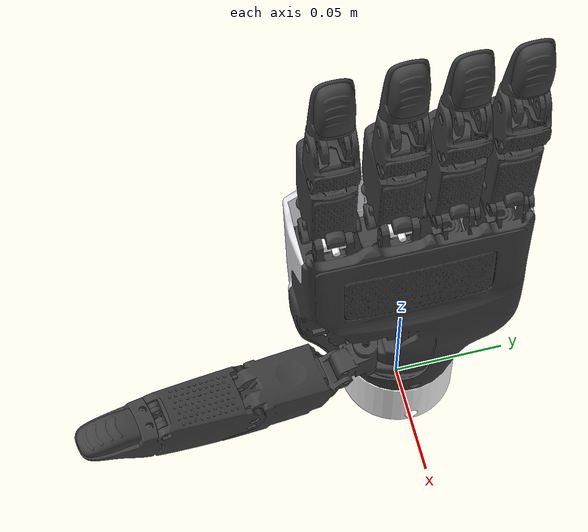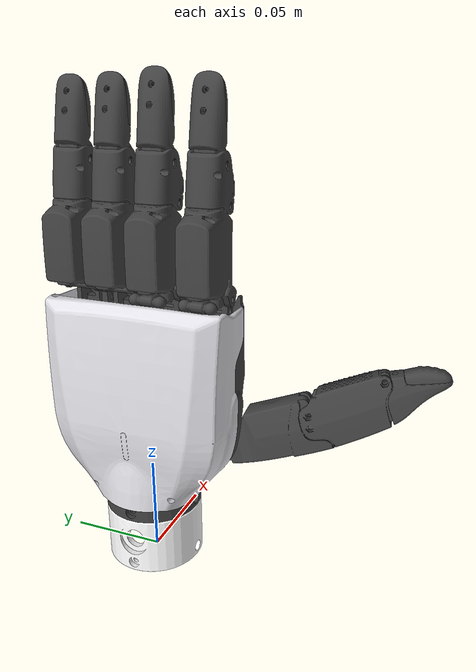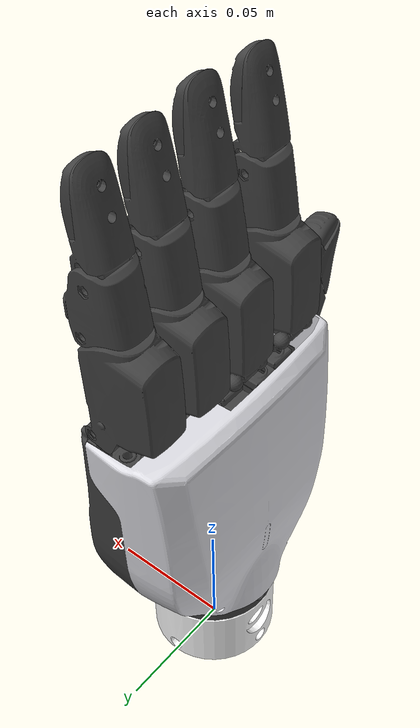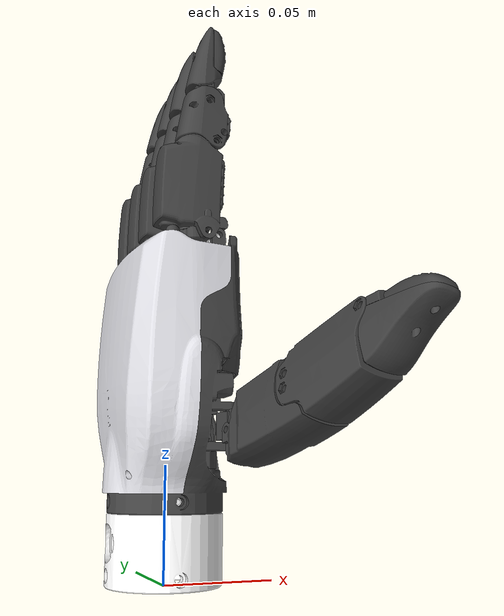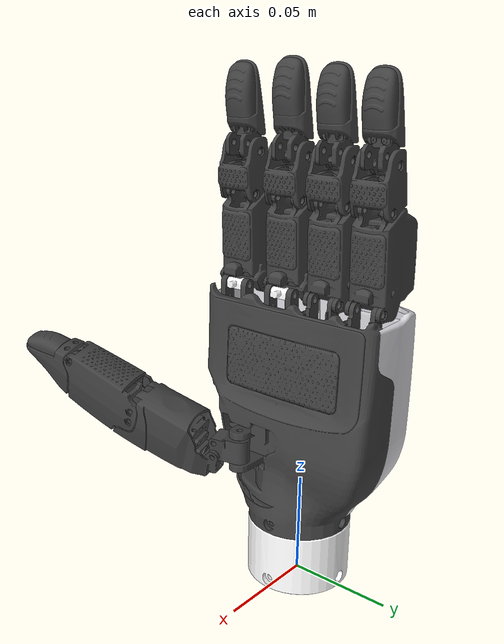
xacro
<?xml version="1.0" encoding="utf-8"?>
<robot name="RH5DG2_L_2026_01_12" xmlns:xacro="http://www.ros.org/wiki/xacro">
  <link name="left_hand_flange">
    <inertial>
      <origin xyz="0.000590324230515745 4.41066235895571E-08 0.018658168492136" rpy="0 0 0" />
      <mass value="0.0816272765426702" />
      <inertia ixx="2.75104686550082E-05" ixy="4.85912163791784E-11" ixz="3.17186486652321E-08" iyy="2.64222243265588E-05" iyz="-1.09459930565443E-11" izz="3.62935481756171E-05" />
    </inertial>
    <visual>
      <origin xyz="0 0 0" rpy="0 0 0" />
      <geometry>
        <mesh filename="package://rh5dg2_description/meshes/left_mirrored/left_hand_flange.STL" />
      </geometry>
      <material name="">
        <color rgba="1 1 1 1" />
      </material>
    </visual>
    <collision>
      <origin xyz="0 0 0" rpy="0 0 0" />
      <geometry>
        <mesh filename="package://rh5dg2_description/meshes/left_mirrored/left_hand_flange.STL" />
      </geometry>
    </collision>
  </link>
  <joint name="left_flange_joint" type="fixed">
    <origin xyz="0 0 0.03" rpy="0 0 0" />
    <parent link="left_hand_flange" />
    <child link="left_hand_base" />
    <axis xyz="0 0 0" />
  </joint>
  <link name="left_hand_base">
    <inertial>
      <origin xyz="0.00476756631465456 -0.00175486916477953 0.0587979044163915" rpy="0 0 0" />
      <mass value="0.313373727622822" />
      <inertia ixx="0.000278996704854979" ixy="-5.98018974024641E-06" ixz="-1.05020418854344E-05" iyy="0.000216312986429234" iyz="1.42127984491883E-05" izz="0.000114394945480033" />
    </inertial>
    <visual>
      <origin xyz="0 0 0" rpy="0 0 0" />
      <geometry>
        <mesh filename="package://rh5dg2_description/meshes/left_mirrored/left_hand_base.STL" />
      </geometry>
      <material name="">
        <color rgba="0.25 0.25 0.25 1" />
      </material>
    </visual>
    <collision>
      <origin xyz="0 0 0" rpy="0 0 0" />
      <geometry>
        <mesh filename="package://rh5dg2_description/meshes/left_mirrored/left_hand_base.STL" />
      </geometry>
    </collision>
  </link>
  <link name="left_thumb_yaw">
    <inertial>
      <origin xyz="0.000851897283664193 -0.00483571971174275 -0.00574141841695075" rpy="0 0 0" />
      <mass value="0.00481735450280768" />
      <inertia ixx="1.77883416432454E-07" ixy="1.4852348790338E-08" ixz="-1.10223746267107E-09" iyy="9.58659671745112E-08" iyz="-5.54372476858133E-11" izz="1.65931218249892E-07" />
    </inertial>
    <visual>
      <origin xyz="0 0 0" rpy="0 0 0" />
      <geometry>
        <mesh filename="package://rh5dg2_description/meshes/left_mirrored/left_thumb_yaw.STL" />
      </geometry>
      <material name="">
        <color rgba="0.25 0.25 0.25 1" />
      </material>
    </visual>
    <collision>
      <origin xyz="0 0 0" rpy="0 0 0" />
      <geometry>
        <mesh filename="package://rh5dg2_description/meshes/left_mirrored/left_thumb_yaw.STL" />
      </geometry>
    </collision>
  </link>
  <joint name="left_thumb_yaw_joint" type="revolute">
    <origin xyz="0.021 -0.021699 0.04175" rpy="0 0 0" />
    <parent link="left_hand_base" />
    <child link="left_thumb_yaw" />
    <axis xyz="0 0 1" />
    <limit lower="0" upper="1.92" effort="1" velocity="2" />
  </joint>
  <link name="left_thumb_mcp">
    <inertial>
      <origin xyz="0.025194612573869 -0.00470162547088749 -0.00721129474275403" rpy="0 0 0" />
      <mass value="0.0417560711563155" />
      <inertia ixx="4.59979341669256E-06" ixy="1.45470106933137E-06" ixz="5.58870625419533E-09" iyy="6.84088254138929E-06" iyz="-6.02428016494947E-09" izz="8.65411062567632E-06" />
    </inertial>
    <visual>
      <origin xyz="0 0 0" rpy="0 0 0" />
      <geometry>
        <mesh filename="package://rh5dg2_description/meshes/left_mirrored/left_thumb_mcp.STL" />
      </geometry>
      <material name="">
        <color rgba="0.25 0.25 0.25 1" />
      </material>
    </visual>
    <collision>
      <origin xyz="0 0 0" rpy="0 0 0" />
      <geometry>
        <mesh filename="package://rh5dg2_description/meshes/left_mirrored/left_thumb_mcp.STL" />
      </geometry>
    </collision>
  </link>
  <joint name="left_thumb_mcp_joint" type="revolute">
    <origin xyz="0.0084186 -0.010193 -0.01022" rpy="-1.7453 0 -1.3963" />
    <parent link="left_thumb_yaw" />
    <child link="left_thumb_mcp" />
    <axis xyz="0 0 -1" />
    <limit lower="0" upper="0.6632" effort="1" velocity="2" />
  </joint>
  <link name="left_thumb_pip">
    <inertial>
      <origin xyz="0.0196408645855889 -0.00242395573483212 -0.0109191426793314" rpy="0 0 0" />
      <mass value="0.0413809633564141" />
      <inertia ixx="4.96850464366127E-06" ixy="1.31907241751355E-06" ixz="8.88960161741137E-09" iyy="6.85457643394163E-06" iyz="-4.37339295353162E-09" izz="8.67807228359951E-06" />
    </inertial>
    <visual>
      <origin xyz="0 0 0" rpy="0 0 0" />
      <geometry>
        <mesh filename="package://rh5dg2_description/meshes/left_mirrored/left_thumb_pip.STL" />
      </geometry>
      <material name="">
        <color rgba="0.25 0.25 0.25 1" />
      </material>
    </visual>
    <collision>
      <origin xyz="0 0 0" rpy="0 0 0" />
      <geometry>
        <mesh filename="package://rh5dg2_description/meshes/left_mirrored/left_thumb_pip.STL" />
      </geometry>
    </collision>
  </link>
  <joint name="left_thumb_pip_joint" type="revolute">
    <origin xyz="0.043727 -0.01749 0.0036" rpy="0 0 0" />
    <parent link="left_thumb_mcp" />
    <child link="left_thumb_pip" />
    <axis xyz="0 0 -1" />
    <limit lower="0" upper="1.041888" effort="1" velocity="2" />
    <mimic joint="left_thumb_mcp_joint" multiplier="1.0853" offset="0" />
  </joint>
  <link name="left_thumb_dip">
    <inertial>
      <origin xyz="0.0129223767041669 0.00448868354831102 -0.00799774270077806" rpy="0 0 0" />
      <mass value="0.00737636421207598" />
      <inertia ixx="4.78965186477482E-07" ixy="3.84626531297066E-08" ixz="-1.001875596605E-10" iyy="8.07509344169254E-07" iyz="7.91953445955167E-11" izz="8.31354000304304E-07" />
    </inertial>
    <visual>
      <origin xyz="0 0 0" rpy="0 0 0" />
      <geometry>
        <mesh filename="package://rh5dg2_description/meshes/left_mirrored/left_thumb_dip.STL" />
      </geometry>
      <material name="">
        <color rgba="0.25 0.25 0.25 1" />
      </material>
    </visual>
    <collision>
      <origin xyz="0 0 0" rpy="0 0 0" />
      <geometry>
        <mesh filename="package://rh5dg2_description/meshes/left_mirrored/left_thumb_dip.STL" />
      </geometry>
    </collision>
  </link>
  <joint name="left_thumb_dip_joint" type="revolute">
    <origin xyz="0.036427 -0.019902 -0.0028" rpy="0 0 0" />
    <parent link="left_thumb_pip" />
    <child link="left_thumb_dip" />
    <axis xyz="0 0 -1" />
    <limit lower="0" upper="1.03" effort="1" velocity="2" />
  </joint>
  <link name="left_thumb_force_sensor">
    <inertial>
      <origin xyz="1.49901055418299E-05 0.00563264518277098 -0.00559872008620623" rpy="0 0 0" />
      <mass value="0.00082154243439554" />
      <inertia ixx="3.90581954306162E-08" ixy="1.27342605974583E-11" ixz="1.9845992056927E-12" iyy="1.76549694169177E-08" iyz="9.02510719590674E-09" izz="4.94025774187095E-08" />
    </inertial>
    <visual>
      <origin xyz="0 0 0" rpy="0 0 0" />
      <geometry>
        <mesh filename="package://rh5dg2_description/meshes/left_mirrored/left_thumb_force_sensor.STL" />
      </geometry>
      <material name="">
        <color rgba="0.25 0.25 0.25 1" />
      </material>
    </visual>
    <collision>
      <origin xyz="0 0 0" rpy="0 0 0" />
      <geometry>
        <mesh filename="package://rh5dg2_description/meshes/left_mirrored/left_thumb_force_sensor.STL" />
      </geometry>
      <surface>
        <friction>
          <ode>
            <mu>0.25</mu>
            <mu2>0.25</mu2>
          </ode>
        </friction>
      </surface>
    </collision>
  </link>
  <joint name="left_thumb_force_sensor_joint" type="fixed">
    <origin xyz="0.025343 -0.0072822 -0.0079999" rpy="1.2546 -1.5705 0.4908" />
    <parent link="left_thumb_dip" />
    <child link="left_thumb_force_sensor" />
    <axis xyz="0 0 0" />
  </joint>
  <link name="left_index_pitch">
    <inertial>
      <origin xyz="-0.000367349463998261 0.000210166188066754 0.00749999141843509" rpy="0 0 0" />
      <mass value="0.00120122602313453" />
      <inertia ixx="7.1980057585389E-09" ixy="-2.00682705504413E-10" ixz="-9.82275603332215E-15" iyy="1.51631692815451E-08" iyz="-1.89296029269202E-14" izz="1.15933131895546E-08" />
    </inertial>
    <visual>
      <origin xyz="0 0 0" rpy="0 0 0" />
      <geometry>
        <mesh filename="package://rh5dg2_description/meshes/left_mirrored/left_index_pitch.STL" />
      </geometry>
      <material name="">
        <color rgba="1 1 1 1" />
      </material>
    </visual>
    <collision>
      <origin xyz="0 0 0" rpy="0 0 0" />
      <geometry>
        <mesh filename="package://rh5dg2_description/meshes/left_mirrored/left_index_pitch.STL" />
      </geometry>
    </collision>
  </link>
  <joint name="left_index_pitch_joint" type="revolute">
    <origin xyz="0.01 -0.040749 0.11475" rpy="-1.5708 0 0" />
    <parent link="left_hand_base" />
    <child link="left_index_pitch" />
    <axis xyz="0 0 1" />
    <limit lower="0" upper="1.45735" effort="1" velocity="2" />
  </joint>
  <link name="left_index_mcp">
    <inertial>
      <origin xyz="-2.01467999326986E-05 -0.0194880288322318 -0.0167588939823536" rpy="0 0 0" />
      <mass value="0.0424626596591662" />
      <inertia ixx="8.58396037676953E-06" ixy="-4.88991803458719E-09" ixz="-2.94206076182322E-09" iyy="3.47062801235869E-06" iyz="1.64833233320948E-07" izz="7.46371056418488E-06" />
    </inertial>
    <visual>
      <origin xyz="0 0 0" rpy="0 0 0" />
      <geometry>
        <mesh filename="package://rh5dg2_description/meshes/left_mirrored/left_index_mcp.STL" />
      </geometry>
      <material name="">
        <color rgba="0.25 0.25 0.25 1" />
      </material>
    </visual>
    <collision>
      <origin xyz="0 0 0" rpy="0 0 0" />
      <geometry>
        <mesh filename="package://rh5dg2_description/meshes/left_mirrored/left_index_mcp.STL" />
      </geometry>
    </collision>
  </link>
  <joint name="left_index_mcp_joint" type="revolute">
    <origin xyz="0.0054995 7.3567E-05 0.0075" rpy="-0.013375 1.5708 0" />
    <parent link="left_index_pitch" />
    <child link="left_index_mcp" />
    <axis xyz="0 0 -1" />
    <limit lower="-0.26118" upper="0.26118" effort="1" velocity="2" />
  </joint>
  <link name="left_index_pip">
    <inertial>
      <origin xyz="-0.00314419755359261 -0.0106744889274093 0.00864412503243511" rpy="0 0 0" />
      <mass value="0.00574496268336632" />
      <inertia ixx="4.93347889217061E-07" ixy="-8.64715993100959E-08" ixz="-5.69691223041633E-10" iyy="4.81536550488213E-07" iyz="-1.94076484140821E-09" izz="5.21882082889534E-07" />
    </inertial>
    <visual>
      <origin xyz="0 0 0" rpy="0 0 0" />
      <geometry>
        <mesh filename="package://rh5dg2_description/meshes/left_mirrored/left_index_pip.STL" />
      </geometry>
      <material name="">
        <color rgba="0.25 0.25 0.25 1" />
      </material>
    </visual>
    <collision>
      <origin xyz="0 0 0" rpy="0 0 0" />
      <geometry>
        <mesh filename="package://rh5dg2_description/meshes/left_mirrored/left_index_pip.STL" />
      </geometry>
    </collision>
  </link>
  <joint name="left_index_pip_joint" type="revolute">
    <origin xyz="0.0084499 -0.042211 -0.0075397" rpy="1.5708 -1.5574 -1.5708" />
    <parent link="left_index_mcp" />
    <child link="left_index_pip" />
    <axis xyz="0 0 1" />
    <limit lower="0" upper="1.396" effort="1" velocity="2" />
  </joint>
  <link name="left_index_dip">
    <inertial>
      <origin xyz="-0.000644949745313064 -0.0154182461989069 0.00810065277966891" rpy="0 0 0" />
      <mass value="0.00664978049326489" />
      <inertia ixx="6.05852720084231E-07" ixy="4.01125528847643E-08" ixz="2.81985876722265E-11" iyy="1.81147685100013E-07" iyz="2.47884779332845E-11" izz="5.21594011307318E-07" />
    </inertial>
    <visual>
      <origin xyz="0 0 0" rpy="0 0 0" />
      <geometry>
        <mesh filename="package://rh5dg2_description/meshes/left_mirrored/left_index_dip.STL" />
      </geometry>
      <material name="">
        <color rgba="0.25 0.25 0.25 1" />
      </material>
    </visual>
    <collision>
      <origin xyz="0 0 0" rpy="0 0 0" />
      <geometry>
        <mesh filename="package://rh5dg2_description/meshes/left_mirrored/left_index_dip.STL" />
      </geometry>
    </collision>
  </link>
  <joint name="left_index_dip_joint" type="revolute">
    <origin xyz="-0.0032605 -0.018491 0.00035" rpy="0 0 0" />
    <parent link="left_index_pip" />
    <child link="left_index_dip" />
    <axis xyz="0 0 1" />
    <limit lower="0" upper="1.568" effort="1" velocity="2" />
    <mimic joint="left_index_pip_joint" multiplier="1.1232" offset="0" />
  </joint>
  <link name="left_index_force_sensor">
    <inertial>
      <origin xyz="1.50411264972679E-05 0.00563322560166721 -0.00559906326998691" rpy="0 0 0" />
      <mass value="0.000821477170958115" />
      <inertia ixx="3.90513353148686E-08" ixy="1.11829645998234E-11" ixz="2.69394488312643E-12" iyy="1.7654484497724E-08" iyz="9.0241075264863E-09" izz="4.93951009703017E-08" />
    </inertial>
    <visual>
      <origin xyz="0 0 0" rpy="0 0 0" />
      <geometry>
        <mesh filename="package://rh5dg2_description/meshes/left_mirrored/left_index_force_sensor.STL" />
      </geometry>
      <material name="">
        <color rgba="0.25 0.25 0.25 1" />
      </material>
    </visual>
    <collision>
      <origin xyz="0 0 0" rpy="0 0 0" />
      <geometry>
        <mesh filename="package://rh5dg2_description/meshes/left_mirrored/left_index_force_sensor.STL" />
      </geometry>
      <surface>
        <friction>
          <ode>
            <mu>0.25</mu>
            <mu2>0.25</mu2>
          </ode>
        </friction>
      </surface>
    </collision>
  </link>
  <joint name="left_index_force_sensor_joint" type="fixed">
    <origin xyz="0.0081855 -0.031293 0.0080998" rpy="-1.887 1.5705 -2.1733" />
    <parent link="left_index_dip" />
    <child link="left_index_force_sensor" />
    <axis xyz="0 0 0" />
  </joint>
  <link name="left_middle_pitch">
    <inertial>
      <origin xyz="-0.000367349404021302 0.000210161704238897 0.00748999141843493" rpy="0 0 0" />
      <mass value="0.00120122602313453" />
      <inertia ixx="7.19800575853891E-09" ixy="-2.00682705504411E-10" ixz="-9.82275603809425E-15" iyy="1.51631692815451E-08" iyz="-1.89296029311036E-14" izz="1.15933131895546E-08" />
    </inertial>
    <visual>
      <origin xyz="0 0 0" rpy="0 0 0" />
      <geometry>
        <mesh filename="package://rh5dg2_description/meshes/left_mirrored/left_middle_pitch.STL" />
      </geometry>
      <material name="">
        <color rgba="1 1 1 1" />
      </material>
    </visual>
    <collision>
      <origin xyz="0 0 0" rpy="0 0 0" />
      <geometry>
        <mesh filename="package://rh5dg2_description/meshes/left_mirrored/left_middle_pitch.STL" />
      </geometry>
    </collision>
  </link>
  <joint name="left_middle_pitch_joint" type="revolute">
    <origin xyz="0.01 -0.014999 0.11475" rpy="-1.5708 0 0" />
    <parent link="left_hand_base" />
    <child link="left_middle_pitch" />
    <axis xyz="0 0 1" />
    <limit lower="0" upper="1.45735" effort="1" velocity="2" />
  </joint>
  <link name="left_middle_mcp">
    <inertial>
      <origin xyz="-2.0146945491413E-05 -0.0194880312652293 -0.0167588944645467" rpy="0 0 0" />
      <mass value="0.042462664998855" />
      <inertia ixx="8.58396241049123E-06" ixy="-4.89002069633661E-09" ixz="-2.94206543993551E-09" iyy="3.47062806248695E-06" iyz="1.64832922001247E-07" izz="7.46371256678543E-06" />
    </inertial>
    <visual>
      <origin xyz="0 0 0" rpy="0 0 0" />
      <geometry>
        <mesh filename="package://rh5dg2_description/meshes/left_mirrored/left_middle_mcp.STL" />
      </geometry>
      <material name="">
        <color rgba="0.25 0.25 0.25 1" />
      </material>
    </visual>
    <collision>
      <origin xyz="0 0 0" rpy="0 0 0" />
      <geometry>
        <mesh filename="package://rh5dg2_description/meshes/left_mirrored/left_middle_mcp.STL" />
      </geometry>
    </collision>
  </link>
  <joint name="left_middle_mcp_joint" type="revolute">
    <origin xyz="0.0054995 7.3563E-05 0.00749" rpy="-0.013375 1.5708 0" />
    <parent link="left_middle_pitch" />
    <child link="left_middle_mcp" />
    <axis xyz="0 0 -1" />
    <limit lower="-0.26118" upper="0.26118" effort="1" velocity="2" />
  </joint>
  <link name="left_middle_pip">
    <inertial>
      <origin xyz="-0.0031441972034093 -0.0106744891490008 0.00864412512279808" rpy="0 0 0" />
      <mass value="0.00574496250418362" />
      <inertia ixx="4.93347880963852E-07" ixy="-8.6471614745122E-08" ixz="-5.69682248129181E-10" iyy="4.81536528984814E-07" iyz="-1.94076860553629E-09" izz="5.21882050440504E-07" />
    </inertial>
    <visual>
      <origin xyz="0 0 0" rpy="0 0 0" />
      <geometry>
        <mesh filename="package://rh5dg2_description/meshes/left_mirrored/left_middle_pip.STL" />
      </geometry>
      <material name="">
        <color rgba="0.25 0.25 0.25 1" />
      </material>
    </visual>
    <collision>
      <origin xyz="0 0 0" rpy="0 0 0" />
      <geometry>
        <mesh filename="package://rh5dg2_description/meshes/left_mirrored/left_middle_pip.STL" />
      </geometry>
    </collision>
  </link>
  <joint name="left_middle_pip_joint" type="revolute">
    <origin xyz="0.0084499 -0.042211 -0.0075397" rpy="1.5708 -1.5574 -1.5708" />
    <parent link="left_middle_mcp" />
    <child link="left_middle_pip" />
    <axis xyz="0 0 1" />
    <limit lower="0" upper="1.396" effort="1" velocity="2" />
  </joint>
  <link name="left_middle_dip">
    <inertial>
      <origin xyz="-0.000701517469291216 -0.0161183560449928 0.00810132146835783" rpy="0 0 0" />
      <mass value="0.00790894444915994" />
      <inertia ixx="9.91831302518168E-07" ixy="-4.22510553763792E-09" ixz="7.16512413943551E-11" iyy="2.48636663362811E-07" iyz="1.49937666788817E-11" izz="9.19075362342684E-07" />
    </inertial>
    <visual>
      <origin xyz="0 0 0" rpy="0 0 0" />
      <geometry>
        <mesh filename="package://rh5dg2_description/meshes/left_mirrored/left_middle_dip.STL" />
      </geometry>
      <material name="">
        <color rgba="0.25 0.25 0.25 1" />
      </material>
    </visual>
    <collision>
      <origin xyz="0 0 0" rpy="0 0 0" />
      <geometry>
        <mesh filename="package://rh5dg2_description/meshes/left_mirrored/left_middle_dip.STL" />
      </geometry>
    </collision>
  </link>
  <joint name="left_middle_dip_joint" type="revolute">
    <origin xyz="-0.0032605 -0.018491 0.00035" rpy="0 0 0" />
    <parent link="left_middle_pip" />
    <child link="left_middle_dip" />
    <axis xyz="0 0 1" />
    <limit lower="0" upper="1.568" effort="1" velocity="2" />
    <mimic joint="left_middle_pip_joint" multiplier="1.1232" offset="0" />
  </joint>
  <link name="left_middle_force_sensor">
    <inertial>
      <origin xyz="1.50394570450282E-05 0.00563322673087575 -0.00559906338785213" rpy="0 0 0" />
      <mass value="0.00082147735143828" />
      <inertia ixx="3.90513415024573E-08" ixy="1.11899639678725E-11" ixz="2.69219173504368E-12" iyy="1.76544907369721E-08" iyz="9.02410988222755E-09" izz="4.93951129208313E-08" />
    </inertial>
    <visual>
      <origin xyz="0 0 0" rpy="0 0 0" />
      <geometry>
        <mesh filename="package://rh5dg2_description/meshes/left_mirrored/left_middle_force_sensor.STL" />
      </geometry>
      <material name="">
        <color rgba="0.25 0.25 0.25 1" />
      </material>
    </visual>
    <collision>
      <origin xyz="0 0 0" rpy="0 0 0" />
      <geometry>
        <mesh filename="package://rh5dg2_description/meshes/left_mirrored/left_middle_force_sensor.STL" />
      </geometry>
      <surface>
        <friction>
          <ode>
            <mu>0.25</mu>
            <mu2>0.25</mu2>
          </ode>
        </friction>
      </surface>
    </collision>
  </link>
  <joint name="left_middle_force_sensor_joint" type="fixed">
    <origin xyz="0.0082142 -0.033293 0.0080998" rpy="-1.887 1.5705 -2.1733" />
    <parent link="left_middle_dip" />
    <child link="left_middle_force_sensor" />
    <axis xyz="0 0 0" />
  </joint>
  <link name="left_ring_mcp">
    <inertial>
      <origin xyz="-0.010700946384068 -0.0212571795812487 0.00821908887230147" rpy="0 0 0" />
      <mass value="0.0400004914542444" />
      <inertia ixx="6.27547006168206E-06" ixy="-9.05324050505327E-08" ixz="3.54862068684509E-09" iyy="3.29045944927205E-06" iyz="4.7782013472686E-09" izz="7.39552142459584E-06" />
    </inertial>
    <visual>
      <origin xyz="0 0 0" rpy="0 0 0" />
      <geometry>
        <mesh filename="package://rh5dg2_description/meshes/left_mirrored/left_ring_mcp.STL" />
      </geometry>
      <material name="">
        <color rgba="0.25 0.25 0.25 1" />
      </material>
    </visual>
    <collision>
      <origin xyz="0 0 0" rpy="0 0 0" />
      <geometry>
        <mesh filename="package://rh5dg2_description/meshes/left_mirrored/left_ring_mcp.STL" />
      </geometry>
    </collision>
  </link>
  <joint name="left_ring_mcp_joint" type="revolute">
    <origin xyz="0.01 0.0068013 0.11475" rpy="-1.5708 0 0" />
    <parent link="left_hand_base" />
    <child link="left_ring_mcp" />
    <axis xyz="0 0 1" />
    <limit lower="0" upper="1.45735" effort="1" velocity="2" />
  </joint>
  <link name="left_ring_pip">
    <inertial>
      <origin xyz="0.00314419732096636 0.0106744890675499 0.00864412507241823" rpy="0 0 0" />
      <mass value="0.00574496256337836" />
      <inertia ixx="4.93347885228067E-07" ixy="-8.64716091309473E-08" ixz="5.6968636055712E-10" iyy="4.81536537220291E-07" iyz="1.94076631732424E-09" izz="5.21882062158111E-07" />
    </inertial>
    <visual>
      <origin xyz="0 0 0" rpy="0 0 0" />
      <geometry>
        <mesh filename="package://rh5dg2_description/meshes/left_mirrored/left_ring_pip.STL" />
      </geometry>
      <material name="">
        <color rgba="0.25 0.25 0.25 1" />
      </material>
    </visual>
    <collision>
      <origin xyz="0 0 0" rpy="0 0 0" />
      <geometry>
        <mesh filename="package://rh5dg2_description/meshes/left_mirrored/left_ring_pip.STL" />
      </geometry>
    </collision>
  </link>
  <joint name="left_ring_pip_joint" type="revolute">
    <origin xyz="-0.0014709 -0.04212 -0.0002499" rpy="0 0 3.1416" />
    <parent link="left_ring_mcp" />
    <child link="left_ring_pip" />
    <axis xyz="0 0 1" />
    <limit lower="0" upper="1.396" effort="1" velocity="2" />
  </joint>
  <link name="left_ring_dip">
    <inertial>
      <origin xyz="-0.000986492679010138 -0.015161048316122 0.0081024753697552" rpy="0 0 0" />
      <mass value="0.0075190935660202" />
      <inertia ixx="7.08307399697461E-07" ixy="2.22143582188237E-08" ixz="-2.76043626039761E-12" iyy="2.15393048794773E-07" iyz="-1.13179084874251E-10" izz="6.38506239799037E-07" />
    </inertial>
    <visual>
      <origin xyz="0 0 0" rpy="0 0 0" />
      <geometry>
        <mesh filename="package://rh5dg2_description/meshes/left_mirrored/left_ring_dip.STL" />
      </geometry>
      <material name="">
        <color rgba="0.25 0.25 0.25 1" />
      </material>
    </visual>
    <collision>
      <origin xyz="0 0 0" rpy="0 0 0" />
      <geometry>
        <mesh filename="package://rh5dg2_description/meshes/left_mirrored/left_ring_dip.STL" />
      </geometry>
    </collision>
  </link>
  <joint name="left_ring_dip_joint" type="revolute">
    <origin xyz="0.0032605 0.018491 0.00035" rpy="0 0 -3.1416" />
    <parent link="left_ring_pip" />
    <child link="left_ring_dip" />
    <axis xyz="0 0 1" />
    <limit lower="0" upper="1.568" effort="1" velocity="2" />
    <mimic joint="left_ring_pip_joint" multiplier="1.1232" offset="0" />
  </joint>
  <link name="left_ring_force_sensor">
    <inertial>
      <origin xyz="1.50394703578235E-05 0.00563322718894786 -0.0055990635981115" rpy="0 0 0" />
      <mass value="0.000821477356009259" />
      <inertia ixx="3.90513390245763E-08" ixy="1.11888199904122E-11" ixz="2.69290146266632E-12" iyy="1.76544911434498E-08" iyz="9.02410955691291E-09" izz="4.9395110655834E-08" />
    </inertial>
    <visual>
      <origin xyz="0 0 0" rpy="0 0 0" />
      <geometry>
        <mesh filename="package://rh5dg2_description/meshes/left_mirrored/left_ring_force_sensor.STL" />
      </geometry>
      <material name="">
        <color rgba="0.25 0.25 0.25 1" />
      </material>
    </visual>
    <collision>
      <origin xyz="0 0 0" rpy="0 0 0" />
      <geometry>
        <mesh filename="package://rh5dg2_description/meshes/left_mirrored/left_ring_force_sensor.STL" />
      </geometry>
      <surface>
        <friction>
          <ode>
            <mu>0.25</mu>
            <mu2>0.25</mu2>
          </ode>
        </friction>
      </surface>
    </collision>
  </link>
  <joint name="left_ring_force_sensor_joint" type="fixed">
    <origin xyz="0.0081807 -0.031294 0.0080998" rpy="-1.887 1.5705 -2.1734" />
    <parent link="left_ring_dip" />
    <child link="left_ring_force_sensor" />
    <axis xyz="0 0 0" />
  </joint>
  <link name="left_pinky_mcp">
    <inertial>
      <origin xyz="-0.010700946065574 -0.0212571797208405 0.00821908889702942" rpy="0 0 0" />
      <mass value="0.0400004927621343" />
      <inertia ixx="6.27547008597196E-06" ixy="-9.05323572263552E-08" ixz="3.54861531059295E-09" iyy="3.2904595698359E-06" iyz="4.77820330506494E-09" izz="7.39552153213612E-06" />
    </inertial>
    <visual>
      <origin xyz="0 0 0" rpy="0 0 0" />
      <geometry>
        <mesh filename="package://rh5dg2_description/meshes/left_mirrored/left_pinky_mcp.STL" />
      </geometry>
      <material name="">
        <color rgba="0.25 0.25 0.25 1" />
      </material>
    </visual>
    <collision>
      <origin xyz="0 0 0" rpy="0 0 0" />
      <geometry>
        <mesh filename="package://rh5dg2_description/meshes/left_mirrored/left_pinky_mcp.STL" />
      </geometry>
    </collision>
  </link>
  <joint name="left_pinky_mcp_joint" type="revolute">
    <origin xyz="0.01 0.028301 0.11475" rpy="-1.5708 0 0" />
    <parent link="left_hand_base" />
    <child link="left_pinky_mcp" />
    <axis xyz="0 0 1" />
    <limit lower="0" upper="1.45735" effort="1" velocity="2" />
  </joint>
  <link name="left_pinky_pip">
    <inertial>
      <origin xyz="-0.00314419720146366 -0.0106744891473517 0.00864412512358675" rpy="0 0 0" />
      <mass value="0.00574496250569101" />
      <inertia ixx="4.93347880966351E-07" ixy="-8.64716148219528E-08" ixz="-5.69682311697152E-10" iyy="4.81536529044768E-07" iyz="-1.94076863628207E-09" izz="5.21882050624766E-07" />
    </inertial>
    <visual>
      <origin xyz="0 0 0" rpy="0 0 0" />
      <geometry>
        <mesh filename="package://rh5dg2_description/meshes/left_mirrored/left_pinky_pip.STL" />
      </geometry>
      <material name="">
        <color rgba="0.25 0.25 0.25 1" />
      </material>
    </visual>
    <collision>
      <origin xyz="0 0 0" rpy="0 0 0" />
      <geometry>
        <mesh filename="package://rh5dg2_description/meshes/left_mirrored/left_pinky_pip.STL" />
      </geometry>
    </collision>
  </link>
  <joint name="left_pinky_pip_joint" type="revolute">
    <origin xyz="-0.0014709 -0.04212 -0.0002499" rpy="0 0 0" />
    <parent link="left_pinky_mcp" />
    <child link="left_pinky_pip" />
    <axis xyz="0 0 1" />
    <limit lower="0" upper="1.396" effort="1" velocity="2" />
  </joint>
  <link name="left_pinky_dip">
    <inertial>
      <origin xyz="-0.000732466536179373 -0.0150757054237563 0.00809913978154883" rpy="0 0 0" />
      <mass value="0.0063989372716428" />
      <inertia ixx="7.66013304699806E-07" ixy="-5.97764025776379E-09" ixz="2.53072492811611E-11" iyy="1.91358086550736E-07" iyz="4.20948025228026E-11" izz="7.03075351565884E-07" />
    </inertial>
    <visual>
      <origin xyz="0 0 0" rpy="0 0 0" />
      <geometry>
        <mesh filename="package://rh5dg2_description/meshes/left_mirrored/left_pinky_dip.STL" />
      </geometry>
      <material name="">
        <color rgba="0.25 0.25 0.25 1" />
      </material>
    </visual>
    <collision>
      <origin xyz="0 0 0" rpy="0 0 0" />
      <geometry>
        <mesh filename="package://rh5dg2_description/meshes/left_mirrored/left_pinky_dip.STL" />
      </geometry>
    </collision>
  </link>
  <joint name="left_pinky_dip_joint" type="revolute">
    <origin xyz="-0.0032605 -0.018491 0.00035" rpy="0 0 0" />
    <parent link="left_pinky_pip" />
    <child link="left_pinky_dip" />
    <axis xyz="0 0 1" />
    <limit lower="0" upper="1.568" effort="1" velocity="2" />
    <mimic joint="left_pinky_pip_joint" multiplier="1.1232" offset="0" />
  </joint>
  <link name="left_pinky_force_sensor">
    <inertial>
      <origin xyz="1.50349710936193E-05 0.00563322977530661 -0.00559906603434453" rpy="0 0 0" />
      <mass value="0.000821476662984886" />
      <inertia ixx="3.90513382701249E-08" ixy="1.11824539770243E-11" ixz="2.69617798622852E-12" iyy="1.76544745744708E-08" iyz="9.02410881725583E-09" izz="4.9395090944421E-08" />
    </inertial>
    <visual>
      <origin xyz="0 0 0" rpy="0 0 0" />
      <geometry>
        <mesh filename="package://rh5dg2_description/meshes/left_mirrored/left_pinky_force_sensor.STL" />
      </geometry>
      <material name="">
        <color rgba="0.25 0.25 0.25 1" />
      </material>
    </visual>
    <collision>
      <origin xyz="0 0 0" rpy="0 0 0" />
      <geometry>
        <mesh filename="package://rh5dg2_description/meshes/left_mirrored/left_pinky_force_sensor.STL" />
      </geometry>
      <surface>
        <friction>
          <ode>
            <mu>0.25</mu>
            <mu2>0.25</mu2>
          </ode>
        </friction>
      </surface>
    </collision>
  </link>
  <joint name="left_pinky_force_sensor_joint" type="fixed">
    <origin xyz="0.0081665 -0.030295 0.0080998" rpy="-1.887 1.5705 -2.1734" />
    <parent link="left_pinky_dip" />
    <child link="left_pinky_force_sensor" />
    <axis xyz="0 0 0" />
  </joint>
  <link name="left_plam_force_sensor">
    <inertial>
      <origin xyz="0.000380260295352312 -0.00147915127629069 -0.00345600862756401" rpy="0 0 0" />
      <mass value="0.00510273604425368" />
      <inertia ixx="4.17831151418347E-07" ixy="2.11883772743013E-08" ixz="9.21528713779677E-09" iyy="1.5412488637117E-06" iyz="-9.85909440884654E-09" izz="1.92333287024597E-06" />
    </inertial>
    <visual>
      <origin xyz="0 0 0" rpy="0 0 0" />
      <geometry>
        <mesh filename="package://rh5dg2_description/meshes/left_mirrored/left_plam_force_sensor.STL" />
      </geometry>
      <material name="">
        <color rgba="0.25 0.25 0.25 1" />
      </material>
    </visual>
    <collision>
      <origin xyz="0 0 0" rpy="0 0 0" />
      <geometry>
        <mesh filename="package://rh5dg2_description/meshes/left_mirrored/left_plam_force_sensor.STL" />
      </geometry>
      <surface>
        <friction>
          <ode>
            <mu>0.25</mu>
            <mu2>0.25</mu2>
          </ode>
        </friction>
      </surface>
    </collision>
  </link>
  <joint name="left_plam_force_sensor_joint" type="fixed">
    <origin xyz="0.021234 -0.00025311 0.081611" rpy="-1.5316 -0.0039142 -1.5709" />
    <parent link="left_hand_base" />
    <child link="left_plam_force_sensor" />
    <axis xyz="0 0 0" />
    <limit lower="0" upper="0" effort="0" velocity="0" />
  </joint>
  <link name="left_hand_casing">
    <inertial>
      <origin xyz="-0.0156286855968737 0.000977283040214036 0.0601912621043598" rpy="0 0 0" />
      <mass value="0.0556767648953531" />
      <inertia ixx="0.000124534850475658" ixy="-5.0052078754887E-07" ixz="-2.29155701714135E-06" iyy="7.21063672909886E-05" iyz="-3.09668261327464E-06" izz="6.17530465789103E-05" />
    </inertial>
    <visual>
      <origin xyz="0 0 0" rpy="0 0 0" />
      <geometry>
        <mesh filename="package://rh5dg2_description/meshes/left_mirrored/left_hand_casing.STL" />
      </geometry>
      <material name="">
        <color rgba="0.866666666666667 0.866666666666667 0.890196078431372 1" />
      </material>
    </visual>
    <collision>
      <origin xyz="0 0 0" rpy="0 0 0" />
      <geometry>
        <mesh filename="package://rh5dg2_description/meshes/left_mirrored/left_hand_casing.STL" />
      </geometry>
    </collision>
  </link>
  <joint name="left_hand_casing_joint" type="fixed">
    <origin xyz="0 0 0" rpy="0 0 0" />
    <parent link="left_hand_base" />
    <child link="left_hand_casing" />
    <axis xyz="0 0 0" />
    <limit lower="0" upper="0" effort="0" velocity="0" />
  </joint>
</robot>
